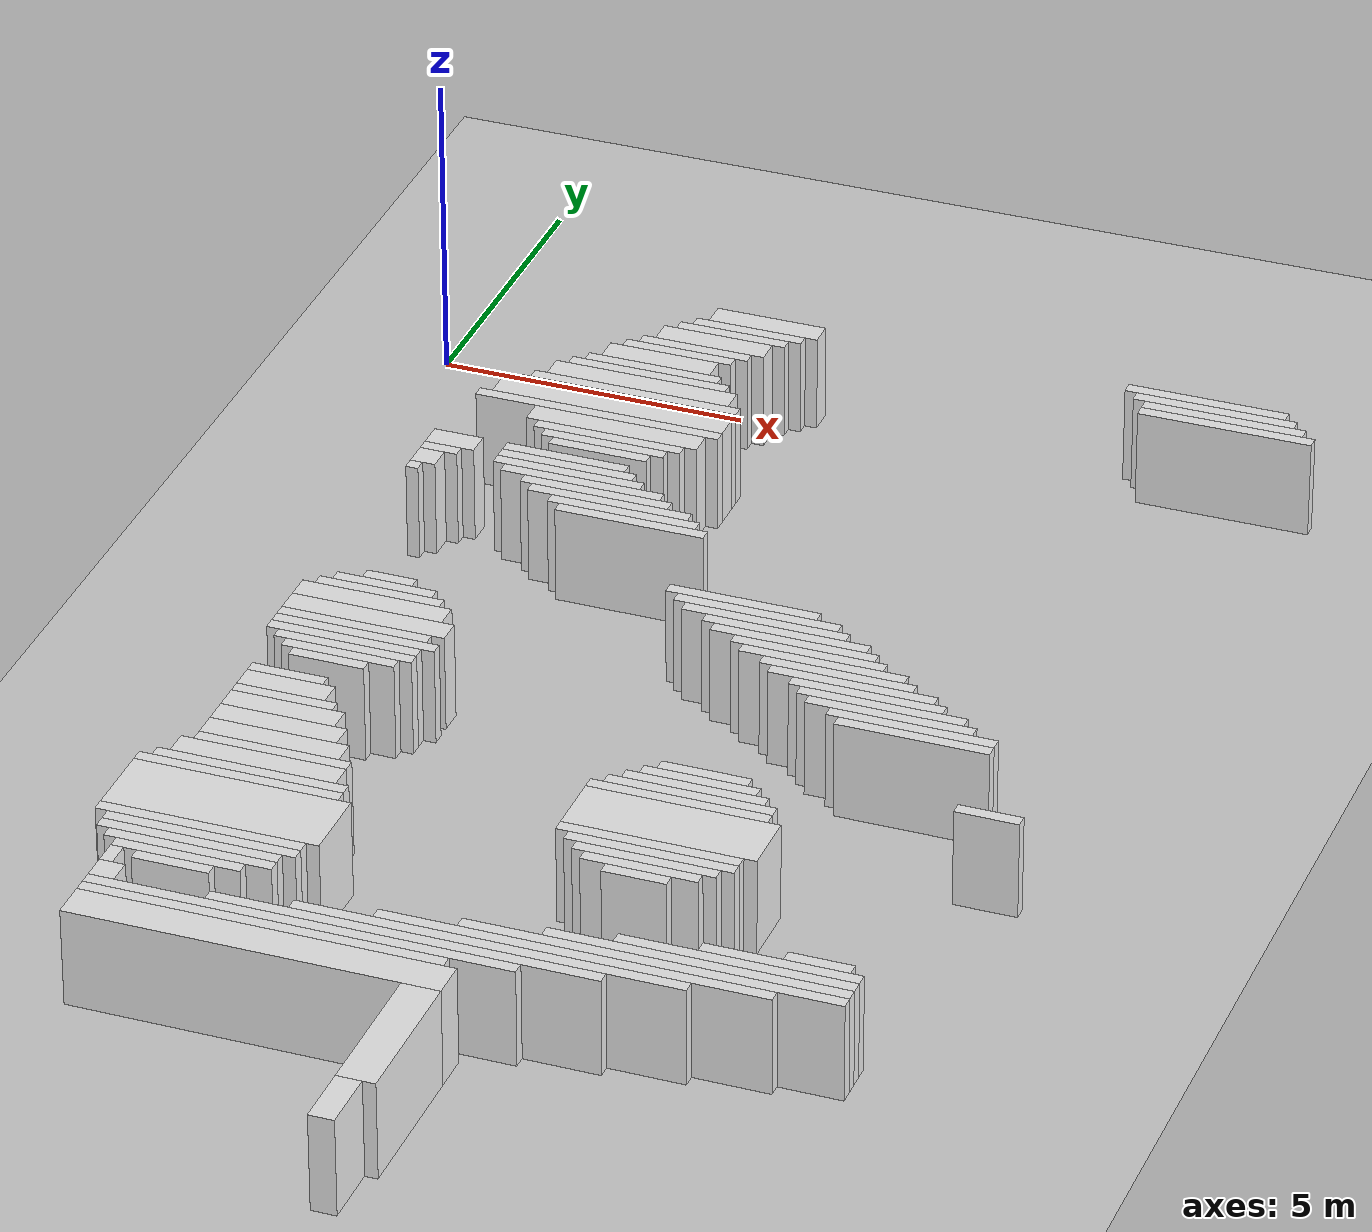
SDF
<sdf version="1.7">
 <world name="default">
  <model name="ground_plane">
   <static>1</static>
   <link name="link">
    <collision name="collision">
     <geometry><plane><normal>0 0 1</normal><size>120 120</size></plane></geometry>
    </collision>
    <visual name="visual">
     <geometry><plane><normal>0 0 1</normal><size>120 120</size></plane></geometry>
     <material>
      <script><uri>file://media/materials/scripts/gazebo.material</uri><name>Gazebo/Grey</name></script>
     </material>
    </visual>
   </link>
  </model>
  <model name="random_complex_03_model">
   <static>1</static>
   <link name="obs_1610">
    <pose>12.5000 0.5000 0.8000 0 0 0</pose>
    <collision name="obs_1610_col"><geometry><box><size>2.6000 0.2000 1.6000</size></box></geometry></collision>
    <visual name="obs_1610_vis">
     <geometry><box><size>2.6000 0.2000 1.6000</size></box></geometry>
     <material>
      <script><uri>file://media/materials/scripts/gazebo.material</uri><name>Gazebo/White</name></script>
     </material>
    </visual>
   </link>
   <link name="obs_1612">
    <pose>5.3000 0.4000 0.8000 0 0 0</pose>
    <collision name="obs_1612_col"><geometry><box><size>1.8000 0.4000 1.6000</size></box></geometry></collision>
    <visual name="obs_1612_vis">
     <geometry><box><size>1.8000 0.4000 1.6000</size></box></geometry>
     <material>
      <script><uri>file://media/materials/scripts/gazebo.material</uri><name>Gazebo/White</name></script>
     </material>
    </visual>
   </link>
   <link name="obs_1615">
    <pose>12.7000 0.3000 0.8000 0 0 0</pose>
    <collision name="obs_1615_col"><geometry><box><size>2.6000 0.2000 1.6000</size></box></geometry></collision>
    <visual name="obs_1615_vis">
     <geometry><box><size>2.6000 0.2000 1.6000</size></box></geometry>
     <material>
      <script><uri>file://media/materials/scripts/gazebo.material</uri><name>Gazebo/White</name></script>
     </material>
    </visual>
   </link>
   <link name="obs_1624">
    <pose>5.1000 0.1000 0.8000 0 0 0</pose>
    <collision name="obs_1624_col"><geometry><box><size>1.8000 0.2000 1.6000</size></box></geometry></collision>
    <visual name="obs_1624_vis">
     <geometry><box><size>1.8000 0.2000 1.6000</size></box></geometry>
     <material>
      <script><uri>file://media/materials/scripts/gazebo.material</uri><name>Gazebo/White</name></script>
     </material>
    </visual>
   </link>
   <link name="obs_1625">
    <pose>12.9000 0.1000 0.8000 0 0 0</pose>
    <collision name="obs_1625_col"><geometry><box><size>2.6000 0.2000 1.6000</size></box></geometry></collision>
    <visual name="obs_1625_vis">
     <geometry><box><size>2.6000 0.2000 1.6000</size></box></geometry>
     <material>
      <script><uri>file://media/materials/scripts/gazebo.material</uri><name>Gazebo/White</name></script>
     </material>
    </visual>
   </link>
   <link name="obs_1632">
    <pose>4.9000 -0.1000 0.8000 0 0 0</pose>
    <collision name="obs_1632_col"><geometry><box><size>1.8000 0.2000 1.6000</size></box></geometry></collision>
    <visual name="obs_1632_vis">
     <geometry><box><size>1.8000 0.2000 1.6000</size></box></geometry>
     <material>
      <script><uri>file://media/materials/scripts/gazebo.material</uri><name>Gazebo/White</name></script>
     </material>
    </visual>
   </link>
   <link name="obs_1633">
    <pose>13.0000 -0.1000 0.8000 0 0 0</pose>
    <collision name="obs_1633_col"><geometry><box><size>2.8000 0.2000 1.6000</size></box></geometry></collision>
    <visual name="obs_1633_vis">
     <geometry><box><size>2.8000 0.2000 1.6000</size></box></geometry>
     <material>
      <script><uri>file://media/materials/scripts/gazebo.material</uri><name>Gazebo/White</name></script>
     </material>
    </visual>
   </link>
   <link name="obs_1644">
    <pose>4.7000 -0.4000 0.8000 0 0 0</pose>
    <collision name="obs_1644_col"><geometry><box><size>1.8000 0.4000 1.6000</size></box></geometry></collision>
    <visual name="obs_1644_vis">
     <geometry><box><size>1.8000 0.4000 1.6000</size></box></geometry>
     <material>
      <script><uri>file://media/materials/scripts/gazebo.material</uri><name>Gazebo/White</name></script>
     </material>
    </visual>
   </link>
   <link name="obs_1658">
    <pose>4.5000 -0.7000 0.8000 0 0 0</pose>
    <collision name="obs_1658_col"><geometry><box><size>1.8000 0.2000 1.6000</size></box></geometry></collision>
    <visual name="obs_1658_vis">
     <geometry><box><size>1.8000 0.2000 1.6000</size></box></geometry>
     <material>
      <script><uri>file://media/materials/scripts/gazebo.material</uri><name>Gazebo/White</name></script>
     </material>
    </visual>
   </link>
   <link name="obs_1670">
    <pose>4.3000 -0.9000 0.8000 0 0 0</pose>
    <collision name="obs_1670_col"><geometry><box><size>1.8000 0.2000 1.6000</size></box></geometry></collision>
    <visual name="obs_1670_vis">
     <geometry><box><size>1.8000 0.2000 1.6000</size></box></geometry>
     <material>
      <script><uri>file://media/materials/scripts/gazebo.material</uri><name>Gazebo/White</name></script>
     </material>
    </visual>
   </link>
   <link name="obs_1684">
    <pose>4.1000 -1.2000 0.8000 0 0 0</pose>
    <collision name="obs_1684_col"><geometry><box><size>1.8000 0.4000 1.6000</size></box></geometry></collision>
    <visual name="obs_1684_vis">
     <geometry><box><size>1.8000 0.4000 1.6000</size></box></geometry>
     <material>
      <script><uri>file://media/materials/scripts/gazebo.material</uri><name>Gazebo/White</name></script>
     </material>
    </visual>
   </link>
   <link name="obs_1700">
    <pose>4.1000 -1.5000 0.8000 0 0 0</pose>
    <collision name="obs_1700_col"><geometry><box><size>2.2000 0.2000 1.6000</size></box></geometry></collision>
    <visual name="obs_1700_vis">
     <geometry><box><size>2.2000 0.2000 1.6000</size></box></geometry>
     <material>
      <script><uri>file://media/materials/scripts/gazebo.material</uri><name>Gazebo/White</name></script>
     </material>
    </visual>
   </link>
   <link name="obs_1710">
    <pose>4.1000 -1.7000 0.8000 0 0 0</pose>
    <collision name="obs_1710_col"><geometry><box><size>2.6000 0.2000 1.6000</size></box></geometry></collision>
    <visual name="obs_1710_vis">
     <geometry><box><size>2.6000 0.2000 1.6000</size></box></geometry>
     <material>
      <script><uri>file://media/materials/scripts/gazebo.material</uri><name>Gazebo/White</name></script>
     </material>
    </visual>
   </link>
   <link name="obs_1723">
    <pose>4.1000 -2.0000 0.8000 0 0 0</pose>
    <collision name="obs_1723_col"><geometry><box><size>3.0000 0.4000 1.6000</size></box></geometry></collision>
    <visual name="obs_1723_vis">
     <geometry><box><size>3.0000 0.4000 1.6000</size></box></geometry>
     <material>
      <script><uri>file://media/materials/scripts/gazebo.material</uri><name>Gazebo/White</name></script>
     </material>
    </visual>
   </link>
   <link name="obs_1736">
    <pose>4.1000 -2.3000 0.8000 0 0 0</pose>
    <collision name="obs_1736_col"><geometry><box><size>3.4000 0.2000 1.6000</size></box></geometry></collision>
    <visual name="obs_1736_vis">
     <geometry><box><size>3.4000 0.2000 1.6000</size></box></geometry>
     <material>
      <script><uri>file://media/materials/scripts/gazebo.material</uri><name>Gazebo/White</name></script>
     </material>
    </visual>
   </link>
   <link name="obs_1745">
    <pose>4.0000 -2.5000 0.8000 0 0 0</pose>
    <collision name="obs_1745_col"><geometry><box><size>3.6000 0.2000 1.6000</size></box></geometry></collision>
    <visual name="obs_1745_vis">
     <geometry><box><size>3.6000 0.2000 1.6000</size></box></geometry>
     <material>
      <script><uri>file://media/materials/scripts/gazebo.material</uri><name>Gazebo/White</name></script>
     </material>
    </visual>
   </link>
   <link name="obs_1758">
    <pose>3.9000 -2.8000 0.8000 0 0 0</pose>
    <collision name="obs_1758_col"><geometry><box><size>3.8000 0.4000 1.6000</size></box></geometry></collision>
    <visual name="obs_1758_vis">
     <geometry><box><size>3.8000 0.4000 1.6000</size></box></geometry>
     <material>
      <script><uri>file://media/materials/scripts/gazebo.material</uri><name>Gazebo/White</name></script>
     </material>
    </visual>
   </link>
   <link name="obs_1771">
    <pose>3.8000 -3.1000 0.8000 0 0 0</pose>
    <collision name="obs_1771_col"><geometry><box><size>4.0000 0.2000 1.6000</size></box></geometry></collision>
    <visual name="obs_1771_vis">
     <geometry><box><size>4.0000 0.2000 1.6000</size></box></geometry>
     <material>
      <script><uri>file://media/materials/scripts/gazebo.material</uri><name>Gazebo/White</name></script>
     </material>
    </visual>
   </link>
   <link name="obs_1775">
    <pose>4.2000 -3.4000 0.8000 0 0 0</pose>
    <collision name="obs_1775_col"><geometry><box><size>2.8000 0.4000 1.6000</size></box></geometry></collision>
    <visual name="obs_1775_vis">
     <geometry><box><size>2.8000 0.4000 1.6000</size></box></geometry>
     <material>
      <script><uri>file://media/materials/scripts/gazebo.material</uri><name>Gazebo/White</name></script>
     </material>
    </visual>
   </link>
   <link name="obs_1778">
    <pose>4.2000 -3.7000 0.8000 0 0 0</pose>
    <collision name="obs_1778_col"><geometry><box><size>2.4000 0.2000 1.6000</size></box></geometry></collision>
    <visual name="obs_1778_vis">
     <geometry><box><size>2.4000 0.2000 1.6000</size></box></geometry>
     <material>
      <script><uri>file://media/materials/scripts/gazebo.material</uri><name>Gazebo/White</name></script>
     </material>
    </visual>
   </link>
   <link name="obs_1783">
    <pose>4.2000 -3.9000 0.8000 0 0 0</pose>
    <collision name="obs_1783_col"><geometry><box><size>2.0000 0.2000 1.6000</size></box></geometry></collision>
    <visual name="obs_1783_vis">
     <geometry><box><size>2.0000 0.2000 1.6000</size></box></geometry>
     <material>
      <script><uri>file://media/materials/scripts/gazebo.material</uri><name>Gazebo/White</name></script>
     </material>
    </visual>
   </link>
   <link name="obs_1786">
    <pose>4.2000 -4.1000 0.8000 0 0 0</pose>
    <collision name="obs_1786_col"><geometry><box><size>1.6000 0.2000 1.6000</size></box></geometry></collision>
    <visual name="obs_1786_vis">
     <geometry><box><size>1.6000 0.2000 1.6000</size></box></geometry>
     <material>
      <script><uri>file://media/materials/scripts/gazebo.material</uri><name>Gazebo/White</name></script>
     </material>
    </visual>
   </link>
   <link name="obs_1796">
    <pose>3.8000 -4.5000 0.8000 0 0 0</pose>
    <collision name="obs_1796_col"><geometry><box><size>2.0000 0.2000 1.6000</size></box></geometry></collision>
    <visual name="obs_1796_vis">
     <geometry><box><size>2.0000 0.2000 1.6000</size></box></geometry>
     <material>
      <script><uri>file://media/materials/scripts/gazebo.material</uri><name>Gazebo/White</name></script>
     </material>
    </visual>
   </link>
   <link name="obs_1799">
    <pose>2.0000 -4.6000 0.8000 0 0 0</pose>
    <collision name="obs_1799_col"><geometry><box><size>0.8000 0.4000 1.6000</size></box></geometry></collision>
    <visual name="obs_1799_vis">
     <geometry><box><size>0.8000 0.4000 1.6000</size></box></geometry>
     <material>
      <script><uri>file://media/materials/scripts/gazebo.material</uri><name>Gazebo/White</name></script>
     </material>
    </visual>
   </link>
   <link name="obs_1804">
    <pose>3.9000 -4.7000 0.8000 0 0 0</pose>
    <collision name="obs_1804_col"><geometry><box><size>2.2000 0.2000 1.6000</size></box></geometry></collision>
    <visual name="obs_1804_vis">
     <geometry><box><size>2.2000 0.2000 1.6000</size></box></geometry>
     <material>
      <script><uri>file://media/materials/scripts/gazebo.material</uri><name>Gazebo/White</name></script>
     </material>
    </visual>
   </link>
   <link name="obs_1809">
    <pose>1.9000 -4.9000 0.8000 0 0 0</pose>
    <collision name="obs_1809_col"><geometry><box><size>0.6000 0.2000 1.6000</size></box></geometry></collision>
    <visual name="obs_1809_vis">
     <geometry><box><size>0.6000 0.2000 1.6000</size></box></geometry>
     <material>
      <script><uri>file://media/materials/scripts/gazebo.material</uri><name>Gazebo/White</name></script>
     </material>
    </visual>
   </link>
   <link name="obs_1810">
    <pose>4.0000 -4.9000 0.8000 0 0 0</pose>
    <collision name="obs_1810_col"><geometry><box><size>2.4000 0.2000 1.6000</size></box></geometry></collision>
    <visual name="obs_1810_vis">
     <geometry><box><size>2.4000 0.2000 1.6000</size></box></geometry>
     <material>
      <script><uri>file://media/materials/scripts/gazebo.material</uri><name>Gazebo/White</name></script>
     </material>
    </visual>
   </link>
   <link name="obs_1815">
    <pose>4.3000 -5.1000 0.8000 0 0 0</pose>
    <collision name="obs_1815_col"><geometry><box><size>2.6000 0.2000 1.6000</size></box></geometry></collision>
    <visual name="obs_1815_vis">
     <geometry><box><size>2.6000 0.2000 1.6000</size></box></geometry>
     <material>
      <script><uri>file://media/materials/scripts/gazebo.material</uri><name>Gazebo/White</name></script>
     </material>
    </visual>
   </link>
   <link name="obs_1817">
    <pose>1.8000 -5.2000 0.8000 0 0 0</pose>
    <collision name="obs_1817_col"><geometry><box><size>0.4000 0.4000 1.6000</size></box></geometry></collision>
    <visual name="obs_1817_vis">
     <geometry><box><size>0.4000 0.4000 1.6000</size></box></geometry>
     <material>
      <script><uri>file://media/materials/scripts/gazebo.material</uri><name>Gazebo/White</name></script>
     </material>
    </visual>
   </link>
   <link name="obs_1820">
    <pose>4.6000 -5.3000 0.8000 0 0 0</pose>
    <collision name="obs_1820_col"><geometry><box><size>2.4000 0.2000 1.6000</size></box></geometry></collision>
    <visual name="obs_1820_vis">
     <geometry><box><size>2.4000 0.2000 1.6000</size></box></geometry>
     <material>
      <script><uri>file://media/materials/scripts/gazebo.material</uri><name>Gazebo/White</name></script>
     </material>
    </visual>
   </link>
   <link name="obs_1822">
    <pose>1.7000 -5.5000 0.8000 0 0 0</pose>
    <collision name="obs_1822_col"><geometry><box><size>0.2000 0.2000 1.6000</size></box></geometry></collision>
    <visual name="obs_1822_vis">
     <geometry><box><size>0.2000 0.2000 1.6000</size></box></geometry>
     <material>
      <script><uri>file://media/materials/scripts/gazebo.material</uri><name>Gazebo/White</name></script>
     </material>
    </visual>
   </link>
   <link name="obs_1823">
    <pose>4.9000 -5.5000 0.8000 0 0 0</pose>
    <collision name="obs_1823_col"><geometry><box><size>2.6000 0.2000 1.6000</size></box></geometry></collision>
    <visual name="obs_1823_vis">
     <geometry><box><size>2.6000 0.2000 1.6000</size></box></geometry>
     <material>
      <script><uri>file://media/materials/scripts/gazebo.material</uri><name>Gazebo/White</name></script>
     </material>
    </visual>
   </link>
   <link name="obs_1828">
    <pose>5.2000 -5.7000 0.8000 0 0 0</pose>
    <collision name="obs_1828_col"><geometry><box><size>2.4000 0.2000 1.6000</size></box></geometry></collision>
    <visual name="obs_1828_vis">
     <geometry><box><size>2.4000 0.2000 1.6000</size></box></geometry>
     <material>
      <script><uri>file://media/materials/scripts/gazebo.material</uri><name>Gazebo/White</name></script>
     </material>
    </visual>
   </link>
   <link name="obs_1833">
    <pose>5.4000 -5.9000 0.8000 0 0 0</pose>
    <collision name="obs_1833_col"><geometry><box><size>2.4000 0.2000 1.6000</size></box></geometry></collision>
    <visual name="obs_1833_vis">
     <geometry><box><size>2.4000 0.2000 1.6000</size></box></geometry>
     <material>
      <script><uri>file://media/materials/scripts/gazebo.material</uri><name>Gazebo/White</name></script>
     </material>
    </visual>
   </link>
   <link name="obs_1873">
    <pose>7.8000 -7.5000 0.8000 0 0 0</pose>
    <collision name="obs_1873_col"><geometry><box><size>2.4000 0.2000 1.6000</size></box></geometry></collision>
    <visual name="obs_1873_vis">
     <geometry><box><size>2.4000 0.2000 1.6000</size></box></geometry>
     <material>
      <script><uri>file://media/materials/scripts/gazebo.material</uri><name>Gazebo/White</name></script>
     </material>
    </visual>
   </link>
   <link name="obs_1881">
    <pose>8.1000 -7.7000 0.8000 0 0 0</pose>
    <collision name="obs_1881_col"><geometry><box><size>2.6000 0.2000 1.6000</size></box></geometry></collision>
    <visual name="obs_1881_vis">
     <geometry><box><size>2.6000 0.2000 1.6000</size></box></geometry>
     <material>
      <script><uri>file://media/materials/scripts/gazebo.material</uri><name>Gazebo/White</name></script>
     </material>
    </visual>
   </link>
   <link name="obs_1887">
    <pose>8.3000 -7.9000 0.8000 0 0 0</pose>
    <collision name="obs_1887_col"><geometry><box><size>2.6000 0.2000 1.6000</size></box></geometry></collision>
    <visual name="obs_1887_vis">
     <geometry><box><size>2.6000 0.2000 1.6000</size></box></geometry>
     <material>
      <script><uri>file://media/materials/scripts/gazebo.material</uri><name>Gazebo/White</name></script>
     </material>
    </visual>
   </link>
   <link name="obs_1893">
    <pose>8.7000 -8.1000 0.8000 0 0 0</pose>
    <collision name="obs_1893_col"><geometry><box><size>2.6000 0.2000 1.6000</size></box></geometry></collision>
    <visual name="obs_1893_vis">
     <geometry><box><size>2.6000 0.2000 1.6000</size></box></geometry>
     <material>
      <script><uri>file://media/materials/scripts/gazebo.material</uri><name>Gazebo/White</name></script>
     </material>
    </visual>
   </link>
   <link name="obs_1899">
    <pose>8.9000 -8.3000 0.8000 0 0 0</pose>
    <collision name="obs_1899_col"><geometry><box><size>2.6000 0.2000 1.6000</size></box></geometry></collision>
    <visual name="obs_1899_vis">
     <geometry><box><size>2.6000 0.2000 1.6000</size></box></geometry>
     <material>
      <script><uri>file://media/materials/scripts/gazebo.material</uri><name>Gazebo/White</name></script>
     </material>
    </visual>
   </link>
   <link name="obs_1904">
    <pose>9.2000 -8.5000 0.8000 0 0 0</pose>
    <collision name="obs_1904_col"><geometry><box><size>2.4000 0.2000 1.6000</size></box></geometry></collision>
    <visual name="obs_1904_vis">
     <geometry><box><size>2.4000 0.2000 1.6000</size></box></geometry>
     <material>
      <script><uri>file://media/materials/scripts/gazebo.material</uri><name>Gazebo/White</name></script>
     </material>
    </visual>
   </link>
   <link name="obs_1910">
    <pose>2.6000 -8.7000 0.8000 0 0 0</pose>
    <collision name="obs_1910_col"><geometry><box><size>0.8000 0.2000 1.6000</size></box></geometry></collision>
    <visual name="obs_1910_vis">
     <geometry><box><size>0.8000 0.2000 1.6000</size></box></geometry>
     <material>
      <script><uri>file://media/materials/scripts/gazebo.material</uri><name>Gazebo/White</name></script>
     </material>
    </visual>
   </link>
   <link name="obs_1911">
    <pose>9.5000 -8.7000 0.8000 0 0 0</pose>
    <collision name="obs_1911_col"><geometry><box><size>2.6000 0.2000 1.6000</size></box></geometry></collision>
    <visual name="obs_1911_vis">
     <geometry><box><size>2.6000 0.2000 1.6000</size></box></geometry>
     <material>
      <script><uri>file://media/materials/scripts/gazebo.material</uri><name>Gazebo/White</name></script>
     </material>
    </visual>
   </link>
   <link name="obs_1917">
    <pose>2.6000 -8.9000 0.8000 0 0 0</pose>
    <collision name="obs_1917_col"><geometry><box><size>1.6000 0.2000 1.6000</size></box></geometry></collision>
    <visual name="obs_1917_vis">
     <geometry><box><size>1.6000 0.2000 1.6000</size></box></geometry>
     <material>
      <script><uri>file://media/materials/scripts/gazebo.material</uri><name>Gazebo/White</name></script>
     </material>
    </visual>
   </link>
   <link name="obs_1918">
    <pose>9.8000 -8.9000 0.8000 0 0 0</pose>
    <collision name="obs_1918_col"><geometry><box><size>2.4000 0.2000 1.6000</size></box></geometry></collision>
    <visual name="obs_1918_vis">
     <geometry><box><size>2.4000 0.2000 1.6000</size></box></geometry>
     <material>
      <script><uri>file://media/materials/scripts/gazebo.material</uri><name>Gazebo/White</name></script>
     </material>
    </visual>
   </link>
   <link name="obs_1927">
    <pose>2.6000 -9.1000 0.8000 0 0 0</pose>
    <collision name="obs_1927_col"><geometry><box><size>2.0000 0.2000 1.6000</size></box></geometry></collision>
    <visual name="obs_1927_vis">
     <geometry><box><size>2.0000 0.2000 1.6000</size></box></geometry>
     <material>
      <script><uri>file://media/materials/scripts/gazebo.material</uri><name>Gazebo/White</name></script>
     </material>
    </visual>
   </link>
   <link name="obs_1928">
    <pose>10.1000 -9.1000 0.8000 0 0 0</pose>
    <collision name="obs_1928_col"><geometry><box><size>2.6000 0.2000 1.6000</size></box></geometry></collision>
    <visual name="obs_1928_vis">
     <geometry><box><size>2.6000 0.2000 1.6000</size></box></geometry>
     <material>
      <script><uri>file://media/materials/scripts/gazebo.material</uri><name>Gazebo/White</name></script>
     </material>
    </visual>
   </link>
   <link name="obs_1935">
    <pose>10.4000 -9.3000 0.8000 0 0 0</pose>
    <collision name="obs_1935_col"><geometry><box><size>2.4000 0.2000 1.6000</size></box></geometry></collision>
    <visual name="obs_1935_vis">
     <geometry><box><size>2.4000 0.2000 1.6000</size></box></geometry>
     <material>
      <script><uri>file://media/materials/scripts/gazebo.material</uri><name>Gazebo/White</name></script>
     </material>
    </visual>
   </link>
   <link name="obs_1939">
    <pose>2.6000 -9.4000 0.8000 0 0 0</pose>
    <collision name="obs_1939_col"><geometry><box><size>2.4000 0.4000 1.6000</size></box></geometry></collision>
    <visual name="obs_1939_vis">
     <geometry><box><size>2.4000 0.4000 1.6000</size></box></geometry>
     <material>
      <script><uri>file://media/materials/scripts/gazebo.material</uri><name>Gazebo/White</name></script>
     </material>
    </visual>
   </link>
   <link name="obs_1943">
    <pose>10.7000 -9.5000 0.8000 0 0 0</pose>
    <collision name="obs_1943_col"><geometry><box><size>2.6000 0.2000 1.6000</size></box></geometry></collision>
    <visual name="obs_1943_vis">
     <geometry><box><size>2.6000 0.2000 1.6000</size></box></geometry>
     <material>
      <script><uri>file://media/materials/scripts/gazebo.material</uri><name>Gazebo/White</name></script>
     </material>
    </visual>
   </link>
   <link name="obs_1949">
    <pose>10.9000 -9.7000 0.8000 0 0 0</pose>
    <collision name="obs_1949_col"><geometry><box><size>2.6000 0.2000 1.6000</size></box></geometry></collision>
    <visual name="obs_1949_vis">
     <geometry><box><size>2.6000 0.2000 1.6000</size></box></geometry>
     <material>
      <script><uri>file://media/materials/scripts/gazebo.material</uri><name>Gazebo/White</name></script>
     </material>
    </visual>
   </link>
   <link name="obs_1954">
    <pose>2.7000 -9.8000 0.8000 0 0 0</pose>
    <collision name="obs_1954_col"><geometry><box><size>2.6000 0.4000 1.6000</size></box></geometry></collision>
    <visual name="obs_1954_vis">
     <geometry><box><size>2.6000 0.4000 1.6000</size></box></geometry>
     <material>
      <script><uri>file://media/materials/scripts/gazebo.material</uri><name>Gazebo/White</name></script>
     </material>
    </visual>
   </link>
   <link name="obs_1957">
    <pose>11.3000 -9.9000 0.8000 0 0 0</pose>
    <collision name="obs_1957_col"><geometry><box><size>2.6000 0.2000 1.6000</size></box></geometry></collision>
    <visual name="obs_1957_vis">
     <geometry><box><size>2.6000 0.2000 1.6000</size></box></geometry>
     <material>
      <script><uri>file://media/materials/scripts/gazebo.material</uri><name>Gazebo/White</name></script>
     </material>
    </visual>
   </link>
   <link name="obs_1967">
    <pose>2.6000 -10.1000 0.8000 0 0 0</pose>
    <collision name="obs_1967_col"><geometry><box><size>2.4000 0.2000 1.6000</size></box></geometry></collision>
    <visual name="obs_1967_vis">
     <geometry><box><size>2.4000 0.2000 1.6000</size></box></geometry>
     <material>
      <script><uri>file://media/materials/scripts/gazebo.material</uri><name>Gazebo/White</name></script>
     </material>
    </visual>
   </link>
   <link name="obs_1968">
    <pose>11.4000 -10.1000 0.8000 0 0 0</pose>
    <collision name="obs_1968_col"><geometry><box><size>2.4000 0.2000 1.6000</size></box></geometry></collision>
    <visual name="obs_1968_vis">
     <geometry><box><size>2.4000 0.2000 1.6000</size></box></geometry>
     <material>
      <script><uri>file://media/materials/scripts/gazebo.material</uri><name>Gazebo/White</name></script>
     </material>
    </visual>
   </link>
   <link name="obs_1971">
    <pose>2.7000 -10.3000 0.8000 0 0 0</pose>
    <collision name="obs_1971_col"><geometry><box><size>2.6000 0.2000 1.6000</size></box></geometry></collision>
    <visual name="obs_1971_vis">
     <geometry><box><size>2.6000 0.2000 1.6000</size></box></geometry>
     <material>
      <script><uri>file://media/materials/scripts/gazebo.material</uri><name>Gazebo/White</name></script>
     </material>
    </visual>
   </link>
   <link name="obs_1974">
    <pose>2.6000 -10.5000 0.8000 0 0 0</pose>
    <collision name="obs_1974_col"><geometry><box><size>2.4000 0.2000 1.6000</size></box></geometry></collision>
    <visual name="obs_1974_vis">
     <geometry><box><size>2.4000 0.2000 1.6000</size></box></geometry>
     <material>
      <script><uri>file://media/materials/scripts/gazebo.material</uri><name>Gazebo/White</name></script>
     </material>
    </visual>
   </link>
   <link name="obs_1977">
    <pose>2.7000 -10.7000 0.8000 0 0 0</pose>
    <collision name="obs_1977_col"><geometry><box><size>2.2000 0.2000 1.6000</size></box></geometry></collision>
    <visual name="obs_1977_vis">
     <geometry><box><size>2.2000 0.2000 1.6000</size></box></geometry>
     <material>
      <script><uri>file://media/materials/scripts/gazebo.material</uri><name>Gazebo/White</name></script>
     </material>
    </visual>
   </link>
   <link name="obs_1981">
    <pose>2.7000 -10.9000 0.8000 0 0 0</pose>
    <collision name="obs_1981_col"><geometry><box><size>1.8000 0.2000 1.6000</size></box></geometry></collision>
    <visual name="obs_1981_vis">
     <geometry><box><size>1.8000 0.2000 1.6000</size></box></geometry>
     <material>
      <script><uri>file://media/materials/scripts/gazebo.material</uri><name>Gazebo/White</name></script>
     </material>
    </visual>
   </link>
   <link name="obs_1985">
    <pose>2.6000 -11.1000 0.8000 0 0 0</pose>
    <collision name="obs_1985_col"><geometry><box><size>1.2000 0.2000 1.6000</size></box></geometry></collision>
    <visual name="obs_1985_vis">
     <geometry><box><size>1.2000 0.2000 1.6000</size></box></geometry>
     <material>
      <script><uri>file://media/materials/scripts/gazebo.material</uri><name>Gazebo/White</name></script>
     </material>
    </visual>
   </link>
   <link name="obs_1993">
    <pose>2.2000 -11.7000 0.8000 0 0 0</pose>
    <collision name="obs_1993_col"><geometry><box><size>1.2000 0.2000 1.6000</size></box></geometry></collision>
    <visual name="obs_1993_vis">
     <geometry><box><size>1.2000 0.2000 1.6000</size></box></geometry>
     <material>
      <script><uri>file://media/materials/scripts/gazebo.material</uri><name>Gazebo/White</name></script>
     </material>
    </visual>
   </link>
   <link name="obs_1994">
    <pose>13.1000 -11.7000 0.8000 0 0 0</pose>
    <collision name="obs_1994_col"><geometry><box><size>1.0000 0.2000 1.6000</size></box></geometry></collision>
    <visual name="obs_1994_vis">
     <geometry><box><size>1.0000 0.2000 1.6000</size></box></geometry>
     <material>
      <script><uri>file://media/materials/scripts/gazebo.material</uri><name>Gazebo/White</name></script>
     </material>
    </visual>
   </link>
   <link name="obs_2005">
    <pose>2.3000 -12.0000 0.8000 0 0 0</pose>
    <collision name="obs_2005_col"><geometry><box><size>1.4000 0.4000 1.6000</size></box></geometry></collision>
    <visual name="obs_2005_vis">
     <geometry><box><size>1.4000 0.4000 1.6000</size></box></geometry>
     <material>
      <script><uri>file://media/materials/scripts/gazebo.material</uri><name>Gazebo/White</name></script>
     </material>
    </visual>
   </link>
   <link name="obs_2012">
    <pose>8.9000 -12.1000 0.8000 0 0 0</pose>
    <collision name="obs_2012_col"><geometry><box><size>1.4000 0.2000 1.6000</size></box></geometry></collision>
    <visual name="obs_2012_vis">
     <geometry><box><size>1.4000 0.2000 1.6000</size></box></geometry>
     <material>
      <script><uri>file://media/materials/scripts/gazebo.material</uri><name>Gazebo/White</name></script>
     </material>
    </visual>
   </link>
   <link name="obs_2020">
    <pose>2.4000 -12.3000 0.8000 0 0 0</pose>
    <collision name="obs_2020_col"><geometry><box><size>1.6000 0.2000 1.6000</size></box></geometry></collision>
    <visual name="obs_2020_vis">
     <geometry><box><size>1.6000 0.2000 1.6000</size></box></geometry>
     <material>
      <script><uri>file://media/materials/scripts/gazebo.material</uri><name>Gazebo/White</name></script>
     </material>
    </visual>
   </link>
   <link name="obs_2021">
    <pose>8.9000 -12.3000 0.8000 0 0 0</pose>
    <collision name="obs_2021_col"><geometry><box><size>1.8000 0.2000 1.6000</size></box></geometry></collision>
    <visual name="obs_2021_vis">
     <geometry><box><size>1.8000 0.2000 1.6000</size></box></geometry>
     <material>
      <script><uri>file://media/materials/scripts/gazebo.material</uri><name>Gazebo/White</name></script>
     </material>
    </visual>
   </link>
   <link name="obs_2028">
    <pose>8.9000 -12.5000 0.8000 0 0 0</pose>
    <collision name="obs_2028_col"><geometry><box><size>2.2000 0.2000 1.6000</size></box></geometry></collision>
    <visual name="obs_2028_vis">
     <geometry><box><size>2.2000 0.2000 1.6000</size></box></geometry>
     <material>
      <script><uri>file://media/materials/scripts/gazebo.material</uri><name>Gazebo/White</name></script>
     </material>
    </visual>
   </link>
   <link name="obs_2035">
    <pose>2.5000 -12.6000 0.8000 0 0 0</pose>
    <collision name="obs_2035_col"><geometry><box><size>1.8000 0.4000 1.6000</size></box></geometry></collision>
    <visual name="obs_2035_vis">
     <geometry><box><size>1.8000 0.4000 1.6000</size></box></geometry>
     <material>
      <script><uri>file://media/materials/scripts/gazebo.material</uri><name>Gazebo/White</name></script>
     </material>
    </visual>
   </link>
   <link name="obs_2040">
    <pose>8.9000 -12.7000 0.8000 0 0 0</pose>
    <collision name="obs_2040_col"><geometry><box><size>2.6000 0.2000 1.6000</size></box></geometry></collision>
    <visual name="obs_2040_vis">
     <geometry><box><size>2.6000 0.2000 1.6000</size></box></geometry>
     <material>
      <script><uri>file://media/materials/scripts/gazebo.material</uri><name>Gazebo/White</name></script>
     </material>
    </visual>
   </link>
   <link name="obs_2048">
    <pose>8.8000 -12.9000 0.8000 0 0 0</pose>
    <collision name="obs_2048_col"><geometry><box><size>2.8000 0.2000 1.6000</size></box></geometry></collision>
    <visual name="obs_2048_vis">
     <geometry><box><size>2.8000 0.2000 1.6000</size></box></geometry>
     <material>
      <script><uri>file://media/materials/scripts/gazebo.material</uri><name>Gazebo/White</name></script>
     </material>
    </visual>
   </link>
   <link name="obs_2053">
    <pose>2.6000 -13.0000 0.8000 0 0 0</pose>
    <collision name="obs_2053_col"><geometry><box><size>2.0000 0.4000 1.6000</size></box></geometry></collision>
    <visual name="obs_2053_vis">
     <geometry><box><size>2.0000 0.4000 1.6000</size></box></geometry>
     <material>
      <script><uri>file://media/materials/scripts/gazebo.material</uri><name>Gazebo/White</name></script>
     </material>
    </visual>
   </link>
   <link name="obs_2064">
    <pose>2.7000 -13.4000 0.8000 0 0 0</pose>
    <collision name="obs_2064_col"><geometry><box><size>2.2000 0.4000 1.6000</size></box></geometry></collision>
    <visual name="obs_2064_vis">
     <geometry><box><size>2.2000 0.4000 1.6000</size></box></geometry>
     <material>
      <script><uri>file://media/materials/scripts/gazebo.material</uri><name>Gazebo/White</name></script>
     </material>
    </visual>
   </link>
   <link name="obs_2074">
    <pose>2.8000 -13.7000 0.8000 0 0 0</pose>
    <collision name="obs_2074_col"><geometry><box><size>2.4000 0.2000 1.6000</size></box></geometry></collision>
    <visual name="obs_2074_vis">
     <geometry><box><size>2.4000 0.2000 1.6000</size></box></geometry>
     <material>
      <script><uri>file://media/materials/scripts/gazebo.material</uri><name>Gazebo/White</name></script>
     </material>
    </visual>
   </link>
   <link name="obs_2077">
    <pose>8.9000 -13.5000 0.8000 0 0 0</pose>
    <collision name="obs_2077_col"><geometry><box><size>3.0000 1.0000 1.6000</size></box></geometry></collision>
    <visual name="obs_2077_vis">
     <geometry><box><size>3.0000 1.0000 1.6000</size></box></geometry>
     <material>
      <script><uri>file://media/materials/scripts/gazebo.material</uri><name>Gazebo/White</name></script>
     </material>
    </visual>
   </link>
   <link name="obs_2089">
    <pose>2.7000 -14.0000 0.8000 0 0 0</pose>
    <collision name="obs_2089_col"><geometry><box><size>2.6000 0.4000 1.6000</size></box></geometry></collision>
    <visual name="obs_2089_vis">
     <geometry><box><size>2.6000 0.4000 1.6000</size></box></geometry>
     <material>
      <script><uri>file://media/materials/scripts/gazebo.material</uri><name>Gazebo/White</name></script>
     </material>
    </visual>
   </link>
   <link name="obs_2093">
    <pose>8.8000 -14.1000 0.8000 0 0 0</pose>
    <collision name="obs_2093_col"><geometry><box><size>2.8000 0.2000 1.6000</size></box></geometry></collision>
    <visual name="obs_2093_vis">
     <geometry><box><size>2.8000 0.2000 1.6000</size></box></geometry>
     <material>
      <script><uri>file://media/materials/scripts/gazebo.material</uri><name>Gazebo/White</name></script>
     </material>
    </visual>
   </link>
   <link name="obs_2101">
    <pose>2.7000 -14.3000 0.8000 0 0 0</pose>
    <collision name="obs_2101_col"><geometry><box><size>3.0000 0.2000 1.6000</size></box></geometry></collision>
    <visual name="obs_2101_vis">
     <geometry><box><size>3.0000 0.2000 1.6000</size></box></geometry>
     <material>
      <script><uri>file://media/materials/scripts/gazebo.material</uri><name>Gazebo/White</name></script>
     </material>
    </visual>
   </link>
   <link name="obs_2102">
    <pose>8.9000 -14.3000 0.8000 0 0 0</pose>
    <collision name="obs_2102_col"><geometry><box><size>2.6000 0.2000 1.6000</size></box></geometry></collision>
    <visual name="obs_2102_vis">
     <geometry><box><size>2.6000 0.2000 1.6000</size></box></geometry>
     <material>
      <script><uri>file://media/materials/scripts/gazebo.material</uri><name>Gazebo/White</name></script>
     </material>
    </visual>
   </link>
   <link name="obs_2107">
    <pose>2.6000 -14.5000 0.8000 0 0 0</pose>
    <collision name="obs_2107_col"><geometry><box><size>3.2000 0.2000 1.6000</size></box></geometry></collision>
    <visual name="obs_2107_vis">
     <geometry><box><size>3.2000 0.2000 1.6000</size></box></geometry>
     <material>
      <script><uri>file://media/materials/scripts/gazebo.material</uri><name>Gazebo/White</name></script>
     </material>
    </visual>
   </link>
   <link name="obs_2108">
    <pose>8.9000 -14.5000 0.8000 0 0 0</pose>
    <collision name="obs_2108_col"><geometry><box><size>2.2000 0.2000 1.6000</size></box></geometry></collision>
    <visual name="obs_2108_vis">
     <geometry><box><size>2.2000 0.2000 1.6000</size></box></geometry>
     <material>
      <script><uri>file://media/materials/scripts/gazebo.material</uri><name>Gazebo/White</name></script>
     </material>
    </visual>
   </link>
   <link name="obs_2117">
    <pose>8.9000 -14.7000 0.8000 0 0 0</pose>
    <collision name="obs_2117_col"><geometry><box><size>1.8000 0.2000 1.6000</size></box></geometry></collision>
    <visual name="obs_2117_vis">
     <geometry><box><size>1.8000 0.2000 1.6000</size></box></geometry>
     <material>
      <script><uri>file://media/materials/scripts/gazebo.material</uri><name>Gazebo/White</name></script>
     </material>
    </visual>
   </link>
   <link name="obs_2122">
    <pose>8.9000 -14.9000 0.8000 0 0 0</pose>
    <collision name="obs_2122_col"><geometry><box><size>1.0000 0.2000 1.6000</size></box></geometry></collision>
    <visual name="obs_2122_vis">
     <geometry><box><size>1.0000 0.2000 1.6000</size></box></geometry>
     <material>
      <script><uri>file://media/materials/scripts/gazebo.material</uri><name>Gazebo/White</name></script>
     </material>
    </visual>
   </link>
   <link name="obs_2154">
    <pose>2.7000 -15.2000 0.8000 0 0 0</pose>
    <collision name="obs_2154_col"><geometry><box><size>3.4000 1.2000 1.6000</size></box></geometry></collision>
    <visual name="obs_2154_vis">
     <geometry><box><size>3.4000 1.2000 1.6000</size></box></geometry>
     <material>
      <script><uri>file://media/materials/scripts/gazebo.material</uri><name>Gazebo/White</name></script>
     </material>
    </visual>
   </link>
   <link name="obs_2170">
    <pose>2.6000 -15.9000 0.8000 0 0 0</pose>
    <collision name="obs_2170_col"><geometry><box><size>3.2000 0.2000 1.6000</size></box></geometry></collision>
    <visual name="obs_2170_vis">
     <geometry><box><size>3.2000 0.2000 1.6000</size></box></geometry>
     <material>
      <script><uri>file://media/materials/scripts/gazebo.material</uri><name>Gazebo/White</name></script>
     </material>
    </visual>
   </link>
   <link name="obs_2179">
    <pose>2.7000 -16.1000 0.8000 0 0 0</pose>
    <collision name="obs_2179_col"><geometry><box><size>3.0000 0.2000 1.6000</size></box></geometry></collision>
    <visual name="obs_2179_vis">
     <geometry><box><size>3.0000 0.2000 1.6000</size></box></geometry>
     <material>
      <script><uri>file://media/materials/scripts/gazebo.material</uri><name>Gazebo/White</name></script>
     </material>
    </visual>
   </link>
   <link name="obs_2180">
    <pose>12.1000 -16.1000 0.8000 0 0 0</pose>
    <collision name="obs_2180_col"><geometry><box><size>1.0000 0.2000 1.6000</size></box></geometry></collision>
    <visual name="obs_2180_vis">
     <geometry><box><size>1.0000 0.2000 1.6000</size></box></geometry>
     <material>
      <script><uri>file://media/materials/scripts/gazebo.material</uri><name>Gazebo/White</name></script>
     </material>
    </visual>
   </link>
   <link name="obs_2190">
    <pose>2.6000 -16.3000 0.8000 0 0 0</pose>
    <collision name="obs_2190_col"><geometry><box><size>2.8000 0.2000 1.6000</size></box></geometry></collision>
    <visual name="obs_2190_vis">
     <geometry><box><size>2.8000 0.2000 1.6000</size></box></geometry>
     <material>
      <script><uri>file://media/materials/scripts/gazebo.material</uri><name>Gazebo/White</name></script>
     </material>
    </visual>
   </link>
   <link name="obs_2191">
    <pose>11.6000 -16.3000 0.8000 0 0 0</pose>
    <collision name="obs_2191_col"><geometry><box><size>2.4000 0.2000 1.6000</size></box></geometry></collision>
    <visual name="obs_2191_vis">
     <geometry><box><size>2.4000 0.2000 1.6000</size></box></geometry>
     <material>
      <script><uri>file://media/materials/scripts/gazebo.material</uri><name>Gazebo/White</name></script>
     </material>
    </visual>
   </link>
   <link name="obs_2199">
    <pose>2.7000 -16.5000 0.8000 0 0 0</pose>
    <collision name="obs_2199_col"><geometry><box><size>2.6000 0.2000 1.6000</size></box></geometry></collision>
    <visual name="obs_2199_vis">
     <geometry><box><size>2.6000 0.2000 1.6000</size></box></geometry>
     <material>
      <script><uri>file://media/materials/scripts/gazebo.material</uri><name>Gazebo/White</name></script>
     </material>
    </visual>
   </link>
   <link name="obs_2200">
    <pose>11.0000 -16.5000 0.8000 0 0 0</pose>
    <collision name="obs_2200_col"><geometry><box><size>3.6000 0.2000 1.6000</size></box></geometry></collision>
    <visual name="obs_2200_vis">
     <geometry><box><size>3.6000 0.2000 1.6000</size></box></geometry>
     <material>
      <script><uri>file://media/materials/scripts/gazebo.material</uri><name>Gazebo/White</name></script>
     </material>
    </visual>
   </link>
   <link name="obs_2208">
    <pose>2.6000 -16.7000 0.8000 0 0 0</pose>
    <collision name="obs_2208_col"><geometry><box><size>2.0000 0.2000 1.6000</size></box></geometry></collision>
    <visual name="obs_2208_vis">
     <geometry><box><size>2.0000 0.2000 1.6000</size></box></geometry>
     <material>
      <script><uri>file://media/materials/scripts/gazebo.material</uri><name>Gazebo/White</name></script>
     </material>
    </visual>
   </link>
   <link name="obs_2209">
    <pose>10.5000 -16.7000 0.8000 0 0 0</pose>
    <collision name="obs_2209_col"><geometry><box><size>4.6000 0.2000 1.6000</size></box></geometry></collision>
    <visual name="obs_2209_vis">
     <geometry><box><size>4.6000 0.2000 1.6000</size></box></geometry>
     <material>
      <script><uri>file://media/materials/scripts/gazebo.material</uri><name>Gazebo/White</name></script>
     </material>
    </visual>
   </link>
   <link name="obs_2220">
    <pose>2.6000 -16.9000 0.8000 0 0 0</pose>
    <collision name="obs_2220_col"><geometry><box><size>1.2000 0.2000 1.6000</size></box></geometry></collision>
    <visual name="obs_2220_vis">
     <geometry><box><size>1.2000 0.2000 1.6000</size></box></geometry>
     <material>
      <script><uri>file://media/materials/scripts/gazebo.material</uri><name>Gazebo/White</name></script>
     </material>
    </visual>
   </link>
   <link name="obs_2221">
    <pose>9.9000 -16.9000 0.8000 0 0 0</pose>
    <collision name="obs_2221_col"><geometry><box><size>5.8000 0.2000 1.6000</size></box></geometry></collision>
    <visual name="obs_2221_vis">
     <geometry><box><size>5.8000 0.2000 1.6000</size></box></geometry>
     <material>
      <script><uri>file://media/materials/scripts/gazebo.material</uri><name>Gazebo/White</name></script>
     </material>
    </visual>
   </link>
   <link name="obs_2224">
    <pose>1.7000 -17.0000 0.8000 0 0 0</pose>
    <collision name="obs_2224_col"><geometry><box><size>0.2000 0.4000 1.6000</size></box></geometry></collision>
    <visual name="obs_2224_vis">
     <geometry><box><size>0.2000 0.4000 1.6000</size></box></geometry>
     <material>
      <script><uri>file://media/materials/scripts/gazebo.material</uri><name>Gazebo/White</name></script>
     </material>
    </visual>
   </link>
   <link name="obs_2230">
    <pose>8.8000 -17.1000 0.8000 0 0 0</pose>
    <collision name="obs_2230_col"><geometry><box><size>6.0000 0.2000 1.6000</size></box></geometry></collision>
    <visual name="obs_2230_vis">
     <geometry><box><size>6.0000 0.2000 1.6000</size></box></geometry>
     <material>
      <script><uri>file://media/materials/scripts/gazebo.material</uri><name>Gazebo/White</name></script>
     </material>
    </visual>
   </link>
   <link name="obs_2239">
    <pose>7.6000 -17.3000 0.8000 0 0 0</pose>
    <collision name="obs_2239_col"><geometry><box><size>6.0000 0.2000 1.6000</size></box></geometry></collision>
    <visual name="obs_2239_vis">
     <geometry><box><size>6.0000 0.2000 1.6000</size></box></geometry>
     <material>
      <script><uri>file://media/materials/scripts/gazebo.material</uri><name>Gazebo/White</name></script>
     </material>
    </visual>
   </link>
   <link name="obs_2243">
    <pose>1.8000 -17.4000 0.8000 0 0 0</pose>
    <collision name="obs_2243_col"><geometry><box><size>0.4000 0.4000 1.6000</size></box></geometry></collision>
    <visual name="obs_2243_vis">
     <geometry><box><size>0.4000 0.4000 1.6000</size></box></geometry>
     <material>
      <script><uri>file://media/materials/scripts/gazebo.material</uri><name>Gazebo/White</name></script>
     </material>
    </visual>
   </link>
   <link name="obs_2248">
    <pose>6.4000 -17.5000 0.8000 0 0 0</pose>
    <collision name="obs_2248_col"><geometry><box><size>6.0000 0.2000 1.6000</size></box></geometry></collision>
    <visual name="obs_2248_vis">
     <geometry><box><size>6.0000 0.2000 1.6000</size></box></geometry>
     <material>
      <script><uri>file://media/materials/scripts/gazebo.material</uri><name>Gazebo/White</name></script>
     </material>
    </visual>
   </link>
   <link name="obs_2258">
    <pose>4.9000 -17.7000 0.8000 0 0 0</pose>
    <collision name="obs_2258_col"><geometry><box><size>6.6000 0.2000 1.6000</size></box></geometry></collision>
    <visual name="obs_2258_vis">
     <geometry><box><size>6.6000 0.2000 1.6000</size></box></geometry>
     <material>
      <script><uri>file://media/materials/scripts/gazebo.material</uri><name>Gazebo/White</name></script>
     </material>
    </visual>
   </link>
   <link name="obs_2265">
    <pose>4.4000 -17.9000 0.8000 0 0 0</pose>
    <collision name="obs_2265_col"><geometry><box><size>5.6000 0.2000 1.6000</size></box></geometry></collision>
    <visual name="obs_2265_vis">
     <geometry><box><size>5.6000 0.2000 1.6000</size></box></geometry>
     <material>
      <script><uri>file://media/materials/scripts/gazebo.material</uri><name>Gazebo/White</name></script>
     </material>
    </visual>
   </link>
   <link name="obs_2282">
    <pose>4.5000 -18.3000 0.8000 0 0 0</pose>
    <collision name="obs_2282_col"><geometry><box><size>5.8000 0.6000 1.6000</size></box></geometry></collision>
    <visual name="obs_2282_vis">
     <geometry><box><size>5.8000 0.6000 1.6000</size></box></geometry>
     <material>
      <script><uri>file://media/materials/scripts/gazebo.material</uri><name>Gazebo/White</name></script>
     </material>
    </visual>
   </link>
   <link name="obs_2348">
    <pose>7.1000 -19.8000 0.8000 0 0 0</pose>
    <collision name="obs_2348_col"><geometry><box><size>0.6000 2.4000 1.6000</size></box></geometry></collision>
    <visual name="obs_2348_vis">
     <geometry><box><size>0.6000 2.4000 1.6000</size></box></geometry>
     <material>
      <script><uri>file://media/materials/scripts/gazebo.material</uri><name>Gazebo/White</name></script>
     </material>
    </visual>
   </link>
   <link name="obs_2376">
    <pose>7.0000 -21.5000 0.8000 0 0 0</pose>
    <collision name="obs_2376_col"><geometry><box><size>0.4000 1.0000 1.6000</size></box></geometry></collision>
    <visual name="obs_2376_vis">
     <geometry><box><size>0.4000 1.0000 1.6000</size></box></geometry>
     <material>
      <script><uri>file://media/materials/scripts/gazebo.material</uri><name>Gazebo/White</name></script>
     </material>
    </visual>
   </link>
  </model>
 </world>
</sdf>
